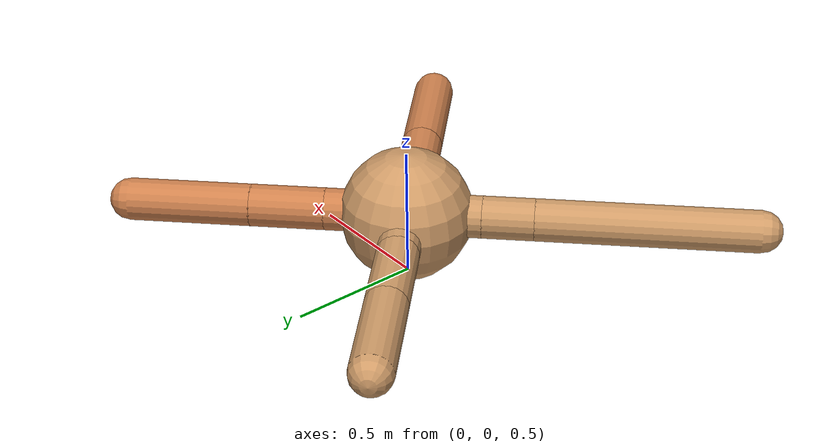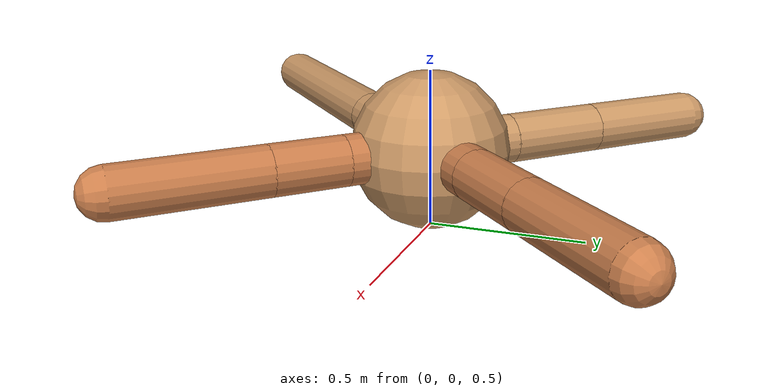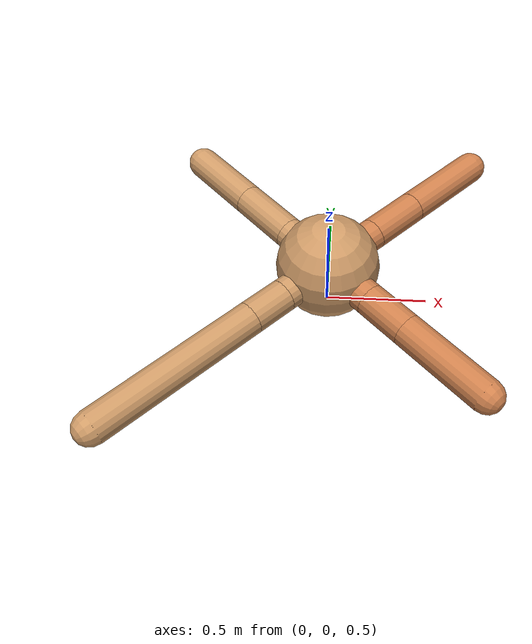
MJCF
<mujoco model="ant">
  <compiler angle="degree" coordinate="local" inertiafromgeom="true" />
  <option integrator="RK4" timestep="0.01" />
  <custom>
    <numeric data="0.0 0.0 0.55 1.0 0.0 0.0 0.0 0.0 1.0 0.0 -1.0 0.0 -1.0 0.0 1.0" name="init_qpos" />
  </custom>
  <default>
    <joint armature="1" damping="1" limited="true" />
    <geom conaffinity="0" condim="3" density="5.0" friction="1.5 0.1 0.1" margin="0.01" rgba="0.8 0.6 0.4 1" />
  </default>
  <worldbody>
    <body name="torso" pos="0 0 0.75">
      <geom name="torso_geom" pos="0 0 0" size="0.25" type="sphere" />

      <body name="front_left_leg" pos="0 0 0">
        <geom fromto="0.0 0.0 0.0 0.21623840308583456 0.21623840308583456 0.0" name="aux_1_geom" size="0.08" type="capsule" rgba=".8 .5 .3 1" />
        <body name="aux_1" pos="0.21623840308583456 0.21623840308583456 0.0">
          <joint axis="0 0 1" name="hip_1" pos="0.0 0.0 0.0" range="-40 40" type="hinge" />
          <geom fromto="0.0 0.0 0.0 0.19966457202227442 0.19966457202227442 0.0" name="left_leg_geom" size="0.08" type="capsule" rgba=".8 .5 .3 1" />
          <body pos="0.19966457202227442 0.19966457202227442 0.0" name="front_left_foot">
            <joint axis="-1 1 0" name="ankle_1" pos="0.0 0.0 0.0" range="30 100" type="hinge" />
            <geom fromto="0.0 0.0 0.0 0.32535619105048064 0.32535619105048064 0.0" name="left_ankle_geom" size="0.08" type="capsule" rgba=".8 .5 .3 1" />
          </body>
        </body>
      </body>
      <body name="front_right_leg" pos="0 0 0">
        <geom fromto="0.0 0.0 0.0 -0.2 0.2 0.0" name="aux_2_geom" size="0.08" type="capsule" />
        <body name="aux_2" pos="-0.2 0.2 0.0">
          <joint axis="0 0 1" name="hip_2" pos="0.0 0.0 0.0" range="-40 40" type="hinge" />
          <geom fromto="0.0 0.0 0.0 -0.2247374434459035 0.2247374434459035 0.0" name="right_leg_geom" size="0.08" type="capsule" />
          <body pos="-0.2247374434459035 0.2247374434459035 0.0" name="front_right_foot">
            <joint axis="1 1 0" name="ankle_2" pos="0.0 0.0 0.0" range="-100 -30" type="hinge" />
            <geom fromto="0.0 0.0 0.0 -0.2767806626703497 0.2767806626703497 0.0" name="right_ankle_geom" size="0.08" type="capsule" />
          </body>
        </body>
      </body>
      <body name="left_back_leg" pos="0 0 0">
        <geom fromto="0.0 0.0 0.0 -0.2 -0.2 0.0" name="aux_3_geom" size="0.08" type="capsule" />
        <body name="aux_3" pos="-0.2 -0.2 0.0">
          <joint axis="0 0 1" name="hip_3" pos="0.0 0.0 0.0" range="-40 40" type="hinge" />
          <geom fromto="0.0 0.0 0.0 -0.13798116025370094 -0.13798116025370094 0.0" name="back_leg_geom" size="0.08" type="capsule" />
          <body pos="-0.13798116025370094 -0.13798116025370094 0.0" name="left_back_foot">
            <joint axis="-1 1 0" name="ankle_3" pos="0.0 0.0 0.0" range="-100 -30" type="hinge" />
            <geom fromto="0.0 0.0 0.0 -0.5888048736546478 -0.5888048736546478 0.0" name="third_ankle_geom" size="0.08" type="capsule" />
          </body>
        </body>
      </body>
      <body name="right_back_leg" pos="0 0 0">
        <geom fromto="0.0 0.0 0.0 0.20256270091838235 -0.20256270091838235 0.0" name="aux_4_geom" size="0.08" type="capsule" rgba=".8 .5 .3 1" />
        <body name="aux_4" pos="0.20256270091838235 -0.20256270091838235 0.0">
          <joint axis="0 0 1" name="hip_4" pos="0.0 0.0 0.0" range="-40 40" type="hinge" />
          <geom fromto="0.0 0.0 0.0 0.16423022983087954 -0.16423022983087954 0.0" name="rightback_leg_geom" size="0.08" type="capsule" rgba=".8 .5 .3 1" />
          <body pos="0.16423022983087954 -0.16423022983087954 0.0" name="right_back_foot">
            <joint axis="1 1 0" name="ankle_4" pos="0.0 0.0 0.0" range="30 100" type="hinge" />
            <geom fromto="0.0 0.0 0.0 0.3241016085227399 -0.3241016085227399 0.0" name="fourth_ankle_geom" size="0.08" type="capsule" rgba=".8 .5 .3 1" />
          </body>
        </body>
      </body>
    </body>
  </worldbody>
  <actuator>
    <motor ctrllimited="true" ctrlrange="-1.0 1.0" joint="hip_4" gear="150" />
    <motor ctrllimited="true" ctrlrange="-1.0 1.0" joint="ankle_4" gear="150" />
    <motor ctrllimited="true" ctrlrange="-1.0 1.0" joint="hip_1" gear="150" />
    <motor ctrllimited="true" ctrlrange="-1.0 1.0" joint="ankle_1" gear="150" />
    <motor ctrllimited="true" ctrlrange="-1.0 1.0" joint="hip_2" gear="150" />
    <motor ctrllimited="true" ctrlrange="-1.0 1.0" joint="ankle_2" gear="150" />
    <motor ctrllimited="true" ctrlrange="-1.0 1.0" joint="hip_3" gear="150" />
    <motor ctrllimited="true" ctrlrange="-1.0 1.0" joint="ankle_3" gear="150" />
  </actuator>
</mujoco>
